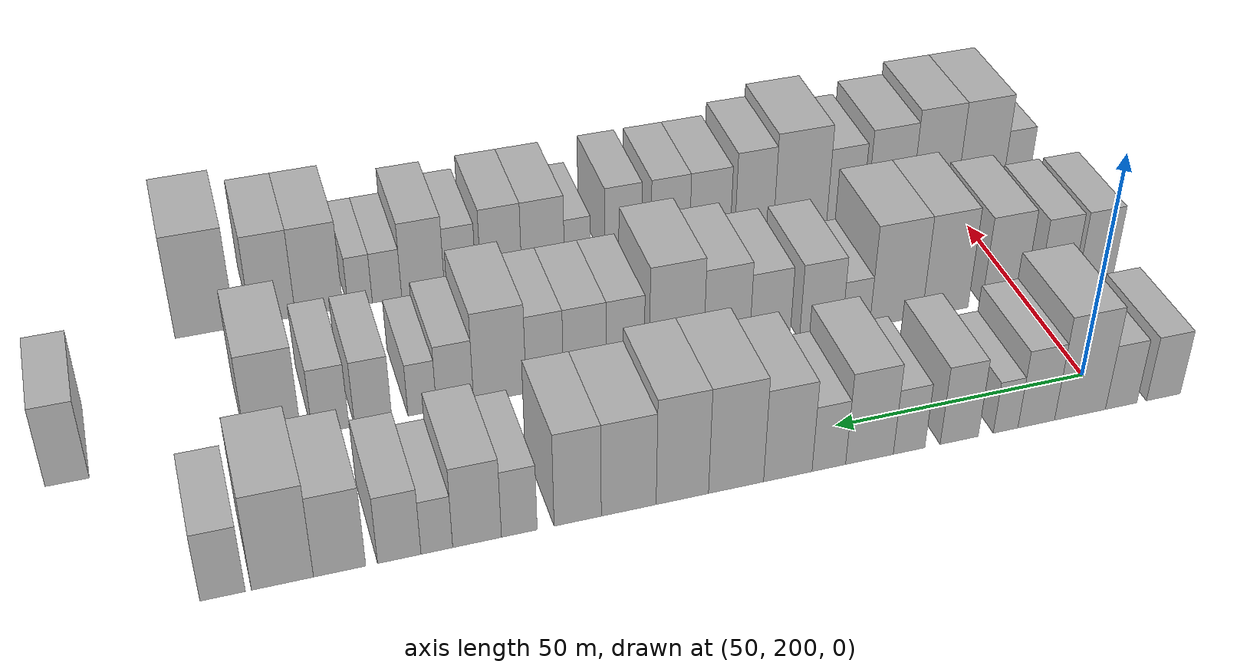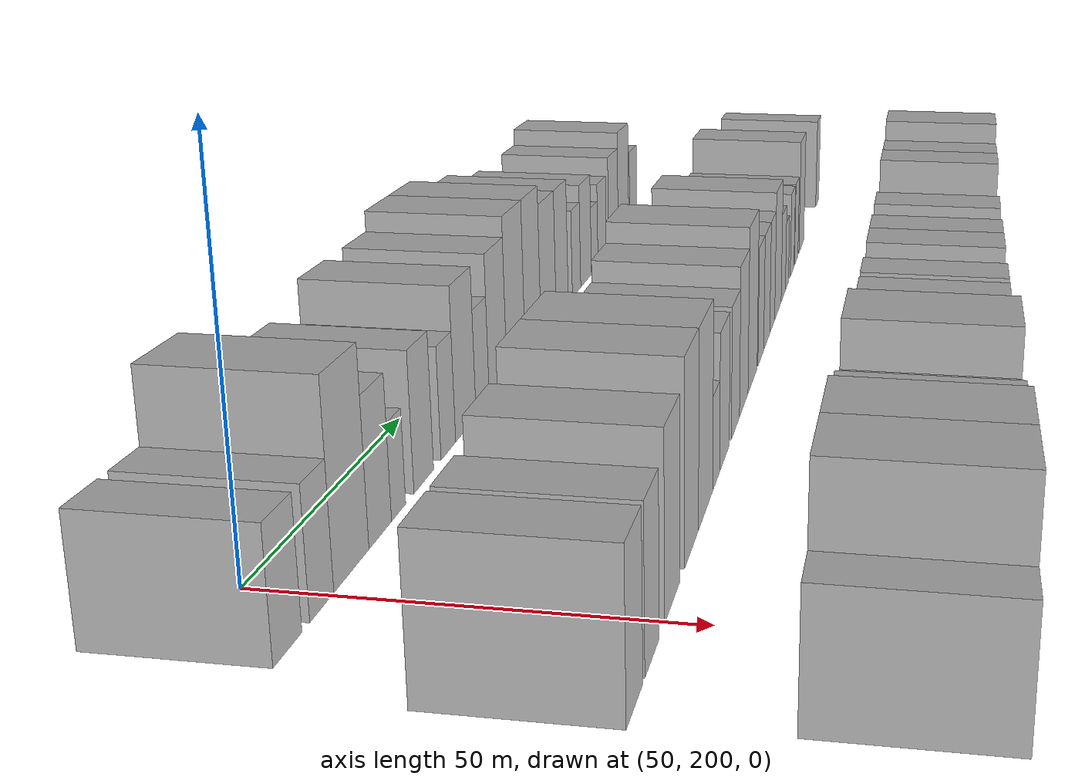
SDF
<sdf version="1.6">
 <world name="default">
  <model name="building_65">
   <static>1</static>
   <pose>50.0000 188.6103 0 0.000000 0.000000 0.000000</pose>
   <link name="link">
    <pose>0 0 7.50 0 0 0</pose>
    <collision name="collision"><geometry><box><size>20.0000 7.0349 15.0000</size></box></geometry></collision>
    <visual name="visual">
     <cast_shadows>0</cast_shadows>
     <geometry><box><size>20.0000 7.0349 15.0000</size></box></geometry>
     <material>
      <script>
       <uri>model://HANNAS_wall/materials/scripts</uri>
       <uri>model://HANNAS_wall/materials/textures</uri>
       <name>vrc/HANNAS_wall</name>
      </script>
     </material>
    </visual>
   </link>
  </model>
  <model name="building_66">
   <static>1</static>
   <pose>50.0000 197.3652 0 0.000000 0.000000 0.000000</pose>
   <link name="link">
    <pose>0 0 7.50 0 0 0</pose>
    <collision name="collision"><geometry><box><size>20.0000 6.4748 15.0000</size></box></geometry></collision>
    <visual name="visual">
     <cast_shadows>0</cast_shadows>
     <geometry><box><size>20.0000 6.4748 15.0000</size></box></geometry>
     <material>
      <script>
       <uri>model://HANNAS_wall/materials/scripts</uri>
       <uri>model://HANNAS_wall/materials/textures</uri>
       <name>vrc/HANNAS_wall</name>
      </script>
     </material>
    </visual>
   </link>
  </model>
  <model name="building_67">
   <static>1</static>
   <pose>50.0000 205.8028 0 0.000000 0.000000 0.000000</pose>
   <link name="link">
    <pose>0 0 12.00 0 0 0</pose>
    <collision name="collision"><geometry><box><size>20.0000 10.4004 24.0000</size></box></geometry></collision>
    <visual name="visual">
     <cast_shadows>0</cast_shadows>
     <geometry><box><size>20.0000 10.4004 24.0000</size></box></geometry>
     <material>
      <script>
       <uri>model://HANNAS_wall/materials/scripts</uri>
       <uri>model://HANNAS_wall/materials/textures</uri>
       <name>vrc/HANNAS_wall</name>
      </script>
     </material>
    </visual>
   </link>
  </model>
  <model name="building_68">
   <static>1</static>
   <pose>50.0000 214.6893 0 0.000000 0.000000 0.000000</pose>
   <link name="link">
    <pose>0 0 9.00 0 0 0</pose>
    <collision name="collision"><geometry><box><size>20.0000 7.3727 18.0000</size></box></geometry></collision>
    <visual name="visual">
     <cast_shadows>0</cast_shadows>
     <geometry><box><size>20.0000 7.3727 18.0000</size></box></geometry>
     <material>
      <script>
       <uri>model://HANNAS_wall/materials/scripts</uri>
       <uri>model://HANNAS_wall/materials/textures</uri>
       <name>vrc/HANNAS_wall</name>
      </script>
     </material>
    </visual>
   </link>
  </model>
  <model name="building_69">
   <static>1</static>
   <pose>50.0000 220.8367 0 0.000000 0.000000 0.000000</pose>
   <link name="link">
    <pose>0 0 6.00 0 0 0</pose>
    <collision name="collision"><geometry><box><size>20.0000 4.9220 12.0000</size></box></geometry></collision>
    <visual name="visual">
     <cast_shadows>0</cast_shadows>
     <geometry><box><size>20.0000 4.9220 12.0000</size></box></geometry>
     <material>
      <script>
       <uri>model://HANNAS_wall/materials/scripts</uri>
       <uri>model://HANNAS_wall/materials/textures</uri>
       <name>vrc/HANNAS_wall</name>
      </script>
     </material>
    </visual>
   </link>
  </model>
  <model name="building_70">
   <static>1</static>
   <pose>50.0000 230.0534 0 0.000000 0.000000 0.000000</pose>
   <link name="link">
    <pose>0 0 9.00 0 0 0</pose>
    <collision name="collision"><geometry><box><size>20.0000 7.5115 18.0000</size></box></geometry></collision>
    <visual name="visual">
     <cast_shadows>0</cast_shadows>
     <geometry><box><size>20.0000 7.5115 18.0000</size></box></geometry>
     <material>
      <script>
       <uri>model://HANNAS_wall/materials/scripts</uri>
       <uri>model://HANNAS_wall/materials/textures</uri>
       <name>vrc/HANNAS_wall</name>
      </script>
     </material>
    </visual>
   </link>
  </model>
  <model name="building_71">
   <static>1</static>
   <pose>50.0000 239.8862 0 0.000000 0.000000 0.000000</pose>
   <link name="link">
    <pose>0 0 7.50 0 0 0</pose>
    <collision name="collision"><geometry><box><size>20.0000 6.1540 15.0000</size></box></geometry></collision>
    <visual name="visual">
     <cast_shadows>0</cast_shadows>
     <geometry><box><size>20.0000 6.1540 15.0000</size></box></geometry>
     <material>
      <script>
       <uri>model://HANNAS_wall/materials/scripts</uri>
       <uri>model://HANNAS_wall/materials/textures</uri>
       <name>vrc/HANNAS_wall</name>
      </script>
     </material>
    </visual>
   </link>
  </model>
  <model name="building_72">
   <static>1</static>
   <pose>50.0000 247.5610 0 0.000000 0.000000 0.000000</pose>
   <link name="link">
    <pose>0 0 10.50 0 0 0</pose>
    <collision name="collision"><geometry><box><size>20.0000 9.1957 21.0000</size></box></geometry></collision>
    <visual name="visual">
     <cast_shadows>0</cast_shadows>
     <geometry><box><size>20.0000 9.1957 21.0000</size></box></geometry>
     <material>
      <script>
       <uri>model://HANNAS_wall/materials/scripts</uri>
       <uri>model://HANNAS_wall/materials/textures</uri>
       <name>vrc/HANNAS_wall</name>
      </script>
     </material>
    </visual>
   </link>
  </model>
  <model name="building_73">
   <static>1</static>
   <pose>50.0000 255.3645 0 0.000000 0.000000 0.000000</pose>
   <link name="link">
    <pose>0 0 7.50 0 0 0</pose>
    <collision name="collision"><geometry><box><size>20.0000 6.4113 15.0000</size></box></geometry></collision>
    <visual name="visual">
     <cast_shadows>0</cast_shadows>
     <geometry><box><size>20.0000 6.4113 15.0000</size></box></geometry>
     <material>
      <script>
       <uri>model://HANNAS_wall/materials/scripts</uri>
       <uri>model://HANNAS_wall/materials/textures</uri>
       <name>vrc/HANNAS_wall</name>
      </script>
     </material>
    </visual>
   </link>
  </model>
  <model name="building_74">
   <static>1</static>
   <pose>50.0000 263.1410 0 0.000000 0.000000 0.000000</pose>
   <link name="link">
    <pose>0 0 10.50 0 0 0</pose>
    <collision name="collision"><geometry><box><size>20.0000 9.1418 21.0000</size></box></geometry></collision>
    <visual name="visual">
     <cast_shadows>0</cast_shadows>
     <geometry><box><size>20.0000 9.1418 21.0000</size></box></geometry>
     <material>
      <script>
       <uri>model://HANNAS_wall/materials/scripts</uri>
       <uri>model://HANNAS_wall/materials/textures</uri>
       <name>vrc/HANNAS_wall</name>
      </script>
     </material>
    </visual>
   </link>
  </model>
  <model name="building_75">
   <static>1</static>
   <pose>50.0000 272.8358 0 0.000000 0.000000 0.000000</pose>
   <link name="link">
    <pose>0 0 12.00 0 0 0</pose>
    <collision name="collision"><geometry><box><size>20.0000 10.2479 24.0000</size></box></geometry></collision>
    <visual name="visual">
     <cast_shadows>0</cast_shadows>
     <geometry><box><size>20.0000 10.2479 24.0000</size></box></geometry>
     <material>
      <script>
       <uri>model://HANNAS_wall/materials/scripts</uri>
       <uri>model://HANNAS_wall/materials/textures</uri>
       <name>vrc/HANNAS_wall</name>
      </script>
     </material>
    </visual>
   </link>
  </model>
  <model name="building_76">
   <static>1</static>
   <pose>50.0000 282.7688 0 0.000000 0.000000 0.000000</pose>
   <link name="link">
    <pose>0 0 12.00 0 0 0</pose>
    <collision name="collision"><geometry><box><size>20.0000 9.6182 24.0000</size></box></geometry></collision>
    <visual name="visual">
     <cast_shadows>0</cast_shadows>
     <geometry><box><size>20.0000 9.6182 24.0000</size></box></geometry>
     <material>
      <script>
       <uri>model://HANNAS_wall/materials/scripts</uri>
       <uri>model://HANNAS_wall/materials/textures</uri>
       <name>vrc/HANNAS_wall</name>
      </script>
     </material>
    </visual>
   </link>
  </model>
  <model name="building_77">
   <static>1</static>
   <pose>50.0000 292.5412 0 0.000000 0.000000 0.000000</pose>
   <link name="link">
    <pose>0 0 10.50 0 0 0</pose>
    <collision name="collision"><geometry><box><size>20.0000 9.9265 21.0000</size></box></geometry></collision>
    <visual name="visual">
     <cast_shadows>0</cast_shadows>
     <geometry><box><size>20.0000 9.9265 21.0000</size></box></geometry>
     <material>
      <script>
       <uri>model://HANNAS_wall/materials/scripts</uri>
       <uri>model://HANNAS_wall/materials/textures</uri>
       <name>vrc/HANNAS_wall</name>
      </script>
     </material>
    </visual>
   </link>
  </model>
  <model name="building_78">
   <static>1</static>
   <pose>50.0000 301.7218 0 0.000000 0.000000 0.000000</pose>
   <link name="link">
    <pose>0 0 10.50 0 0 0</pose>
    <collision name="collision"><geometry><box><size>20.0000 8.4347 21.0000</size></box></geometry></collision>
    <visual name="visual">
     <cast_shadows>0</cast_shadows>
     <geometry><box><size>20.0000 8.4347 21.0000</size></box></geometry>
     <material>
      <script>
       <uri>model://HANNAS_wall/materials/scripts</uri>
       <uri>model://HANNAS_wall/materials/textures</uri>
       <name>vrc/HANNAS_wall</name>
      </script>
     </material>
    </visual>
   </link>
  </model>
  <model name="building_79">
   <static>1</static>
   <pose>50.0000 312.0803 0 0.000000 0.000000 0.000000</pose>
   <link name="link">
    <pose>0 0 7.50 0 0 0</pose>
    <collision name="collision"><geometry><box><size>20.0000 6.2825 15.0000</size></box></geometry></collision>
    <visual name="visual">
     <cast_shadows>0</cast_shadows>
     <geometry><box><size>20.0000 6.2825 15.0000</size></box></geometry>
     <material>
      <script>
       <uri>model://HANNAS_wall/materials/scripts</uri>
       <uri>model://HANNAS_wall/materials/textures</uri>
       <name>vrc/HANNAS_wall</name>
      </script>
     </material>
    </visual>
   </link>
  </model>
  <model name="building_80">
   <static>1</static>
   <pose>50.0000 319.4730 0 0.000000 0.000000 0.000000</pose>
   <link name="link">
    <pose>0 0 9.00 0 0 0</pose>
    <collision name="collision"><geometry><box><size>20.0000 8.5029 18.0000</size></box></geometry></collision>
    <visual name="visual">
     <cast_shadows>0</cast_shadows>
     <geometry><box><size>20.0000 8.5029 18.0000</size></box></geometry>
     <material>
      <script>
       <uri>model://HANNAS_wall/materials/scripts</uri>
       <uri>model://HANNAS_wall/materials/textures</uri>
       <name>vrc/HANNAS_wall</name>
      </script>
     </material>
    </visual>
   </link>
  </model>
  <model name="building_81">
   <static>1</static>
   <pose>50.0000 326.4572 0 0.000000 0.000000 0.000000</pose>
   <link name="link">
    <pose>0 0 6.00 0 0 0</pose>
    <collision name="collision"><geometry><box><size>20.0000 5.4654 12.0000</size></box></geometry></collision>
    <visual name="visual">
     <cast_shadows>0</cast_shadows>
     <geometry><box><size>20.0000 5.4654 12.0000</size></box></geometry>
     <material>
      <script>
       <uri>model://HANNAS_wall/materials/scripts</uri>
       <uri>model://HANNAS_wall/materials/textures</uri>
       <name>vrc/HANNAS_wall</name>
      </script>
     </material>
    </visual>
   </link>
  </model>
  <model name="building_82">
   <static>1</static>
   <pose>50.0000 332.9049 0 0.000000 0.000000 0.000000</pose>
   <link name="link">
    <pose>0 0 7.50 0 0 0</pose>
    <collision name="collision"><geometry><box><size>20.0000 7.4299 15.0000</size></box></geometry></collision>
    <visual name="visual">
     <cast_shadows>0</cast_shadows>
     <geometry><box><size>20.0000 7.4299 15.0000</size></box></geometry>
     <material>
      <script>
       <uri>model://HANNAS_wall/materials/scripts</uri>
       <uri>model://HANNAS_wall/materials/textures</uri>
       <name>vrc/HANNAS_wall</name>
      </script>
     </material>
    </visual>
   </link>
  </model>
  <model name="building_83">
   <static>1</static>
   <pose>50.0000 343.0223 0 0.000000 0.000000 0.000000</pose>
   <link name="link">
    <pose>0 0 9.00 0 0 0</pose>
    <collision name="collision"><geometry><box><size>20.0000 8.8050 18.0000</size></box></geometry></collision>
    <visual name="visual">
     <cast_shadows>0</cast_shadows>
     <geometry><box><size>20.0000 8.8050 18.0000</size></box></geometry>
     <material>
      <script>
       <uri>model://HANNAS_wall/materials/scripts</uri>
       <uri>model://HANNAS_wall/materials/textures</uri>
       <name>vrc/HANNAS_wall</name>
      </script>
     </material>
    </visual>
   </link>
  </model>
  <model name="building_84">
   <static>1</static>
   <pose>50.0000 352.5790 0 0.000000 0.000000 0.000000</pose>
   <link name="link">
    <pose>0 0 10.50 0 0 0</pose>
    <collision name="collision"><geometry><box><size>20.0000 10.3086 21.0000</size></box></geometry></collision>
    <visual name="visual">
     <cast_shadows>0</cast_shadows>
     <geometry><box><size>20.0000 10.3086 21.0000</size></box></geometry>
     <material>
      <script>
       <uri>model://HANNAS_wall/materials/scripts</uri>
       <uri>model://HANNAS_wall/materials/textures</uri>
       <name>vrc/HANNAS_wall</name>
      </script>
     </material>
    </visual>
   </link>
  </model>
  <model name="building_85">
   <static>1</static>
   <pose>50.0000 362.4500 0 0.000000 0.000000 0.000000</pose>
   <link name="link">
    <pose>0 0 7.50 0 0 0</pose>
    <collision name="collision"><geometry><box><size>20.0000 7.4333 15.0000</size></box></geometry></collision>
    <visual name="visual">
     <cast_shadows>0</cast_shadows>
     <geometry><box><size>20.0000 7.4333 15.0000</size></box></geometry>
     <material>
      <script>
       <uri>model://HANNAS_wall/materials/scripts</uri>
       <uri>model://HANNAS_wall/materials/textures</uri>
       <name>vrc/HANNAS_wall</name>
      </script>
     </material>
    </visual>
   </link>
  </model>
  <model name="building_145">
   <static>1</static>
   <pose>85.0000 183.9886 0 0.000000 0.000000 0.000000</pose>
   <link name="link">
    <pose>0 0 9.00 0 0 0</pose>
    <collision name="collision"><geometry><box><size>20.0000 7.8847 18.0000</size></box></geometry></collision>
    <visual name="visual">
     <cast_shadows>0</cast_shadows>
     <geometry><box><size>20.0000 7.8847 18.0000</size></box></geometry>
     <material>
      <script>
       <uri>model://HANNAS_wall/materials/scripts</uri>
       <uri>model://HANNAS_wall/materials/textures</uri>
       <name>vrc/HANNAS_wall</name>
      </script>
     </material>
    </visual>
   </link>
  </model>
  <model name="building_146">
   <static>1</static>
   <pose>85.0000 192.7471 0 0.000000 0.000000 0.000000</pose>
   <link name="link">
    <pose>0 0 9.00 0 0 0</pose>
    <collision name="collision"><geometry><box><size>20.0000 7.6324 18.0000</size></box></geometry></collision>
    <visual name="visual">
     <cast_shadows>0</cast_shadows>
     <geometry><box><size>20.0000 7.6324 18.0000</size></box></geometry>
     <material>
      <script>
       <uri>model://HANNAS_wall/materials/scripts</uri>
       <uri>model://HANNAS_wall/materials/textures</uri>
       <name>vrc/HANNAS_wall</name>
      </script>
     </material>
    </visual>
   </link>
  </model>
  <model name="building_147">
   <static>1</static>
   <pose>85.0000 204.1989 0 0.000000 0.000000 0.000000</pose>
   <link name="link">
    <pose>0 0 10.50 0 0 0</pose>
    <collision name="collision"><geometry><box><size>20.0000 9.2712 21.0000</size></box></geometry></collision>
    <visual name="visual">
     <cast_shadows>0</cast_shadows>
     <geometry><box><size>20.0000 9.2712 21.0000</size></box></geometry>
     <material>
      <script>
       <uri>model://HANNAS_wall/materials/scripts</uri>
       <uri>model://HANNAS_wall/materials/textures</uri>
       <name>vrc/HANNAS_wall</name>
      </script>
     </material>
    </visual>
   </link>
  </model>
  <model name="building_148">
   <static>1</static>
   <pose>85.0000 216.7560 0 0.000000 0.000000 0.000000</pose>
   <link name="link">
    <pose>0 0 12.00 0 0 0</pose>
    <collision name="collision"><geometry><box><size>20.0000 9.8429 24.0000</size></box></geometry></collision>
    <visual name="visual">
     <cast_shadows>0</cast_shadows>
     <geometry><box><size>20.0000 9.8429 24.0000</size></box></geometry>
     <material>
      <script>
       <uri>model://HANNAS_wall/materials/scripts</uri>
       <uri>model://HANNAS_wall/materials/textures</uri>
       <name>vrc/HANNAS_wall</name>
      </script>
     </material>
    </visual>
   </link>
  </model>
  <model name="building_149">
   <static>1</static>
   <pose>85.0000 227.2353 0 0.000000 0.000000 0.000000</pose>
   <link name="link">
    <pose>0 0 12.00 0 0 0</pose>
    <collision name="collision"><geometry><box><size>20.0000 11.1158 24.0000</size></box></geometry></collision>
    <visual name="visual">
     <cast_shadows>0</cast_shadows>
     <geometry><box><size>20.0000 11.1158 24.0000</size></box></geometry>
     <material>
      <script>
       <uri>model://HANNAS_wall/materials/scripts</uri>
       <uri>model://HANNAS_wall/materials/textures</uri>
       <name>vrc/HANNAS_wall</name>
      </script>
     </material>
    </visual>
   </link>
  </model>
  <model name="building_150">
   <static>1</static>
   <pose>85.0000 235.6933 0 0.000000 0.000000 0.000000</pose>
   <link name="link">
    <pose>0 0 6.00 0 0 0</pose>
    <collision name="collision"><geometry><box><size>20.0000 5.8001 12.0000</size></box></geometry></collision>
    <visual name="visual">
     <cast_shadows>0</cast_shadows>
     <geometry><box><size>20.0000 5.8001 12.0000</size></box></geometry>
     <material>
      <script>
       <uri>model://HANNAS_wall/materials/scripts</uri>
       <uri>model://HANNAS_wall/materials/textures</uri>
       <name>vrc/HANNAS_wall</name>
      </script>
     </material>
    </visual>
   </link>
  </model>
  <model name="building_151">
   <static>1</static>
   <pose>85.0000 243.0001 0 0.000000 0.000000 0.000000</pose>
   <link name="link">
    <pose>0 0 9.00 0 0 0</pose>
    <collision name="collision"><geometry><box><size>20.0000 8.8135 18.0000</size></box></geometry></collision>
    <visual name="visual">
     <cast_shadows>0</cast_shadows>
     <geometry><box><size>20.0000 8.8135 18.0000</size></box></geometry>
     <material>
      <script>
       <uri>model://HANNAS_wall/materials/scripts</uri>
       <uri>model://HANNAS_wall/materials/textures</uri>
       <name>vrc/HANNAS_wall</name>
      </script>
     </material>
    </visual>
   </link>
  </model>
  <model name="building_152">
   <static>1</static>
   <pose>85.0000 253.5554 0 0.000000 0.000000 0.000000</pose>
   <link name="link">
    <pose>0 0 9.00 0 0 0</pose>
    <collision name="collision"><geometry><box><size>20.0000 8.2970 18.0000</size></box></geometry></collision>
    <visual name="visual">
     <cast_shadows>0</cast_shadows>
     <geometry><box><size>20.0000 8.2970 18.0000</size></box></geometry>
     <material>
      <script>
       <uri>model://HANNAS_wall/materials/scripts</uri>
       <uri>model://HANNAS_wall/materials/textures</uri>
       <name>vrc/HANNAS_wall</name>
      </script>
     </material>
    </visual>
   </link>
  </model>
  <model name="building_153">
   <static>1</static>
   <pose>85.0000 262.3510 0 0.000000 0.000000 0.000000</pose>
   <link name="link">
    <pose>0 0 10.50 0 0 0</pose>
    <collision name="collision"><geometry><box><size>20.0000 9.2942 21.0000</size></box></geometry></collision>
    <visual name="visual">
     <cast_shadows>0</cast_shadows>
     <geometry><box><size>20.0000 9.2942 21.0000</size></box></geometry>
     <material>
      <script>
       <uri>model://HANNAS_wall/materials/scripts</uri>
       <uri>model://HANNAS_wall/materials/textures</uri>
       <name>vrc/HANNAS_wall</name>
      </script>
     </material>
    </visual>
   </link>
  </model>
  <model name="building_154">
   <static>1</static>
   <pose>85.0000 272.4054 0 0.000000 0.000000 0.000000</pose>
   <link name="link">
    <pose>0 0 12.00 0 0 0</pose>
    <collision name="collision"><geometry><box><size>20.0000 10.8147 24.0000</size></box></geometry></collision>
    <visual name="visual">
     <cast_shadows>0</cast_shadows>
     <geometry><box><size>20.0000 10.8147 24.0000</size></box></geometry>
     <material>
      <script>
       <uri>model://HANNAS_wall/materials/scripts</uri>
       <uri>model://HANNAS_wall/materials/textures</uri>
       <name>vrc/HANNAS_wall</name>
      </script>
     </material>
    </visual>
   </link>
  </model>
  <model name="building_155">
   <static>1</static>
   <pose>85.0000 282.5316 0 0.000000 0.000000 0.000000</pose>
   <link name="link">
    <pose>0 0 9.00 0 0 0</pose>
    <collision name="collision"><geometry><box><size>20.0000 7.4376 18.0000</size></box></geometry></collision>
    <visual name="visual">
     <cast_shadows>0</cast_shadows>
     <geometry><box><size>20.0000 7.4376 18.0000</size></box></geometry>
     <material>
      <script>
       <uri>model://HANNAS_wall/materials/scripts</uri>
       <uri>model://HANNAS_wall/materials/textures</uri>
       <name>vrc/HANNAS_wall</name>
      </script>
     </material>
    </visual>
   </link>
  </model>
  <model name="building_156">
   <static>1</static>
   <pose>85.0000 290.4359 0 0.000000 0.000000 0.000000</pose>
   <link name="link">
    <pose>0 0 9.00 0 0 0</pose>
    <collision name="collision"><geometry><box><size>20.0000 8.3710 18.0000</size></box></geometry></collision>
    <visual name="visual">
     <cast_shadows>0</cast_shadows>
     <geometry><box><size>20.0000 8.3710 18.0000</size></box></geometry>
     <material>
      <script>
       <uri>model://HANNAS_wall/materials/scripts</uri>
       <uri>model://HANNAS_wall/materials/textures</uri>
       <name>vrc/HANNAS_wall</name>
      </script>
     </material>
    </visual>
   </link>
  </model>
  <model name="building_157">
   <static>1</static>
   <pose>85.0000 298.2253 0 0.000000 0.000000 0.000000</pose>
   <link name="link">
    <pose>0 0 9.00 0 0 0</pose>
    <collision name="collision"><geometry><box><size>20.0000 7.2078 18.0000</size></box></geometry></collision>
    <visual name="visual">
     <cast_shadows>0</cast_shadows>
     <geometry><box><size>20.0000 7.2078 18.0000</size></box></geometry>
     <material>
      <script>
       <uri>model://HANNAS_wall/materials/scripts</uri>
       <uri>model://HANNAS_wall/materials/textures</uri>
       <name>vrc/HANNAS_wall</name>
      </script>
     </material>
    </visual>
   </link>
  </model>
  <model name="building_158">
   <static>1</static>
   <pose>85.0000 306.8424 0 0.000000 0.000000 0.000000</pose>
   <link name="link">
    <pose>0 0 10.50 0 0 0</pose>
    <collision name="collision"><geometry><box><size>20.0000 10.0263 21.0000</size></box></geometry></collision>
    <visual name="visual">
     <cast_shadows>0</cast_shadows>
     <geometry><box><size>20.0000 10.0263 21.0000</size></box></geometry>
     <material>
      <script>
       <uri>model://HANNAS_wall/materials/scripts</uri>
       <uri>model://HANNAS_wall/materials/textures</uri>
       <name>vrc/HANNAS_wall</name>
      </script>
     </material>
    </visual>
   </link>
  </model>
  <model name="building_159">
   <static>1</static>
   <pose>85.0000 315.3717 0 0.000000 0.000000 0.000000</pose>
   <link name="link">
    <pose>0 0 7.50 0 0 0</pose>
    <collision name="collision"><geometry><box><size>20.0000 7.0324 15.0000</size></box></geometry></collision>
    <visual name="visual">
     <cast_shadows>0</cast_shadows>
     <geometry><box><size>20.0000 7.0324 15.0000</size></box></geometry>
     <material>
      <script>
       <uri>model://HANNAS_wall/materials/scripts</uri>
       <uri>model://HANNAS_wall/materials/textures</uri>
       <name>vrc/HANNAS_wall</name>
      </script>
     </material>
    </visual>
   </link>
  </model>
  <model name="building_160">
   <static>1</static>
   <pose>85.0000 321.5623 0 0.000000 0.000000 0.000000</pose>
   <link name="link">
    <pose>0 0 6.00 0 0 0</pose>
    <collision name="collision"><geometry><box><size>20.0000 5.3487 12.0000</size></box></geometry></collision>
    <visual name="visual">
     <cast_shadows>0</cast_shadows>
     <geometry><box><size>20.0000 5.3487 12.0000</size></box></geometry>
     <material>
      <script>
       <uri>model://HANNAS_wall/materials/scripts</uri>
       <uri>model://HANNAS_wall/materials/textures</uri>
       <name>vrc/HANNAS_wall</name>
      </script>
     </material>
    </visual>
   </link>
  </model>
  <model name="building_161">
   <static>1</static>
   <pose>85.0000 330.6893 0 0.000000 0.000000 0.000000</pose>
   <link name="link">
    <pose>0 0 7.50 0 0 0</pose>
    <collision name="collision"><geometry><box><size>20.0000 6.9052 15.0000</size></box></geometry></collision>
    <visual name="visual">
     <cast_shadows>0</cast_shadows>
     <geometry><box><size>20.0000 6.9052 15.0000</size></box></geometry>
     <material>
      <script>
       <uri>model://HANNAS_wall/materials/scripts</uri>
       <uri>model://HANNAS_wall/materials/textures</uri>
       <name>vrc/HANNAS_wall</name>
      </script>
     </material>
    </visual>
   </link>
  </model>
  <model name="building_162">
   <static>1</static>
   <pose>85.0000 338.5051 0 0.000000 0.000000 0.000000</pose>
   <link name="link">
    <pose>0 0 7.50 0 0 0</pose>
    <collision name="collision"><geometry><box><size>20.0000 6.7264 15.0000</size></box></geometry></collision>
    <visual name="visual">
     <cast_shadows>0</cast_shadows>
     <geometry><box><size>20.0000 6.7264 15.0000</size></box></geometry>
     <material>
      <script>
       <uri>model://HANNAS_wall/materials/scripts</uri>
       <uri>model://HANNAS_wall/materials/textures</uri>
       <name>vrc/HANNAS_wall</name>
      </script>
     </material>
    </visual>
   </link>
  </model>
  <model name="building_163">
   <static>1</static>
   <pose>85.0000 348.8778 0 0.000000 0.000000 0.000000</pose>
   <link name="link">
    <pose>0 0 10.50 0 0 0</pose>
    <collision name="collision"><geometry><box><size>20.0000 10.0191 21.0000</size></box></geometry></collision>
    <visual name="visual">
     <cast_shadows>0</cast_shadows>
     <geometry><box><size>20.0000 10.0191 21.0000</size></box></geometry>
     <material>
      <script>
       <uri>model://HANNAS_wall/materials/scripts</uri>
       <uri>model://HANNAS_wall/materials/textures</uri>
       <name>vrc/HANNAS_wall</name>
      </script>
     </material>
    </visual>
   </link>
  </model>
  <model name="building_164">
   <static>1</static>
   <pose>85.0000 385.3236 0 0.000000 0.000000 0.000000</pose>
   <link name="link">
    <pose>0 0 9.00 0 0 0</pose>
    <collision name="collision"><geometry><box><size>20.0000 7.6242 18.0000</size></box></geometry></collision>
    <visual name="visual">
     <cast_shadows>0</cast_shadows>
     <geometry><box><size>20.0000 7.6242 18.0000</size></box></geometry>
     <material>
      <script>
       <uri>model://HANNAS_wall/materials/scripts</uri>
       <uri>model://HANNAS_wall/materials/textures</uri>
       <name>vrc/HANNAS_wall</name>
      </script>
     </material>
    </visual>
   </link>
  </model>
  <model name="building_226">
   <static>1</static>
   <pose>120.0000 184.2614 0 0.000000 0.000000 0.000000</pose>
   <link name="link">
    <pose>0 0 7.50 0 0 0</pose>
    <collision name="collision"><geometry><box><size>20.0000 6.2006 15.0000</size></box></geometry></collision>
    <visual name="visual">
     <cast_shadows>0</cast_shadows>
     <geometry><box><size>20.0000 6.2006 15.0000</size></box></geometry>
     <material>
      <script>
       <uri>model://HANNAS_wall/materials/scripts</uri>
       <uri>model://HANNAS_wall/materials/textures</uri>
       <name>vrc/HANNAS_wall</name>
      </script>
     </material>
    </visual>
   </link>
  </model>
  <model name="building_227">
   <static>1</static>
   <pose>120.0000 192.7088 0 0.000000 0.000000 0.000000</pose>
   <link name="link">
    <pose>0 0 12.00 0 0 0</pose>
    <collision name="collision"><geometry><box><size>20.0000 10.6941 24.0000</size></box></geometry></collision>
    <visual name="visual">
     <cast_shadows>0</cast_shadows>
     <geometry><box><size>20.0000 10.6941 24.0000</size></box></geometry>
     <material>
      <script>
       <uri>model://HANNAS_wall/materials/scripts</uri>
       <uri>model://HANNAS_wall/materials/textures</uri>
       <name>vrc/HANNAS_wall</name>
      </script>
     </material>
    </visual>
   </link>
  </model>
  <model name="building_228">
   <static>1</static>
   <pose>120.0000 203.2987 0 0.000000 0.000000 0.000000</pose>
   <link name="link">
    <pose>0 0 12.00 0 0 0</pose>
    <collision name="collision"><geometry><box><size>20.0000 10.4856 24.0000</size></box></geometry></collision>
    <visual name="visual">
     <cast_shadows>0</cast_shadows>
     <geometry><box><size>20.0000 10.4856 24.0000</size></box></geometry>
     <material>
      <script>
       <uri>model://HANNAS_wall/materials/scripts</uri>
       <uri>model://HANNAS_wall/materials/textures</uri>
       <name>vrc/HANNAS_wall</name>
      </script>
     </material>
    </visual>
   </link>
  </model>
  <model name="building_229">
   <static>1</static>
   <pose>120.0000 213.6302 0 0.000000 0.000000 0.000000</pose>
   <link name="link">
    <pose>0 0 10.50 0 0 0</pose>
    <collision name="collision"><geometry><box><size>20.0000 10.1773 21.0000</size></box></geometry></collision>
    <visual name="visual">
     <cast_shadows>0</cast_shadows>
     <geometry><box><size>20.0000 10.1773 21.0000</size></box></geometry>
     <material>
      <script>
       <uri>model://HANNAS_wall/materials/scripts</uri>
       <uri>model://HANNAS_wall/materials/textures</uri>
       <name>vrc/HANNAS_wall</name>
      </script>
     </material>
    </visual>
   </link>
  </model>
  <model name="building_230">
   <static>1</static>
   <pose>120.0000 223.7211 0 0.000000 0.000000 0.000000</pose>
   <link name="link">
    <pose>0 0 9.00 0 0 0</pose>
    <collision name="collision"><geometry><box><size>20.0000 8.0046 18.0000</size></box></geometry></collision>
    <visual name="visual">
     <cast_shadows>0</cast_shadows>
     <geometry><box><size>20.0000 8.0046 18.0000</size></box></geometry>
     <material>
      <script>
       <uri>model://HANNAS_wall/materials/scripts</uri>
       <uri>model://HANNAS_wall/materials/textures</uri>
       <name>vrc/HANNAS_wall</name>
      </script>
     </material>
    </visual>
   </link>
  </model>
  <model name="building_231">
   <static>1</static>
   <pose>120.0000 233.6905 0 0.000000 0.000000 0.000000</pose>
   <link name="link">
    <pose>0 0 12.00 0 0 0</pose>
    <collision name="collision"><geometry><box><size>20.0000 11.9342 24.0000</size></box></geometry></collision>
    <visual name="visual">
     <cast_shadows>0</cast_shadows>
     <geometry><box><size>20.0000 11.9342 24.0000</size></box></geometry>
     <material>
      <script>
       <uri>model://HANNAS_wall/materials/scripts</uri>
       <uri>model://HANNAS_wall/materials/textures</uri>
       <name>vrc/HANNAS_wall</name>
      </script>
     </material>
    </visual>
   </link>
  </model>
  <model name="building_232">
   <static>1</static>
   <pose>120.0000 243.9291 0 0.000000 0.000000 0.000000</pose>
   <link name="link">
    <pose>0 0 10.50 0 0 0</pose>
    <collision name="collision"><geometry><box><size>20.0000 8.5429 21.0000</size></box></geometry></collision>
    <visual name="visual">
     <cast_shadows>0</cast_shadows>
     <geometry><box><size>20.0000 8.5429 21.0000</size></box></geometry>
     <material>
      <script>
       <uri>model://HANNAS_wall/materials/scripts</uri>
       <uri>model://HANNAS_wall/materials/textures</uri>
       <name>vrc/HANNAS_wall</name>
      </script>
     </material>
    </visual>
   </link>
  </model>
  <model name="building_233">
   <static>1</static>
   <pose>120.0000 253.6373 0 0.000000 0.000000 0.000000</pose>
   <link name="link">
    <pose>0 0 9.00 0 0 0</pose>
    <collision name="collision"><geometry><box><size>20.0000 8.8736 18.0000</size></box></geometry></collision>
    <visual name="visual">
     <cast_shadows>0</cast_shadows>
     <geometry><box><size>20.0000 8.8736 18.0000</size></box></geometry>
     <material>
      <script>
       <uri>model://HANNAS_wall/materials/scripts</uri>
       <uri>model://HANNAS_wall/materials/textures</uri>
       <name>vrc/HANNAS_wall</name>
      </script>
     </material>
    </visual>
   </link>
  </model>
  <model name="building_234">
   <static>1</static>
   <pose>120.0000 262.2475 0 0.000000 0.000000 0.000000</pose>
   <link name="link">
    <pose>0 0 9.00 0 0 0</pose>
    <collision name="collision"><geometry><box><size>20.0000 8.3468 18.0000</size></box></geometry></collision>
    <visual name="visual">
     <cast_shadows>0</cast_shadows>
     <geometry><box><size>20.0000 8.3468 18.0000</size></box></geometry>
     <material>
      <script>
       <uri>model://HANNAS_wall/materials/scripts</uri>
       <uri>model://HANNAS_wall/materials/textures</uri>
       <name>vrc/HANNAS_wall</name>
      </script>
     </material>
    </visual>
   </link>
  </model>
  <model name="building_235">
   <static>1</static>
   <pose>120.0000 272.3525 0 0.000000 0.000000 0.000000</pose>
   <link name="link">
    <pose>0 0 9.00 0 0 0</pose>
    <collision name="collision"><geometry><box><size>20.0000 7.8633 18.0000</size></box></geometry></collision>
    <visual name="visual">
     <cast_shadows>0</cast_shadows>
     <geometry><box><size>20.0000 7.8633 18.0000</size></box></geometry>
     <material>
      <script>
       <uri>model://HANNAS_wall/materials/scripts</uri>
       <uri>model://HANNAS_wall/materials/textures</uri>
       <name>vrc/HANNAS_wall</name>
      </script>
     </material>
    </visual>
   </link>
  </model>
  <model name="building_236">
   <static>1</static>
   <pose>120.0000 282.0280 0 0.000000 0.000000 0.000000</pose>
   <link name="link">
    <pose>0 0 6.00 0 0 0</pose>
    <collision name="collision"><geometry><box><size>20.0000 5.4878 12.0000</size></box></geometry></collision>
    <visual name="visual">
     <cast_shadows>0</cast_shadows>
     <geometry><box><size>20.0000 5.4878 12.0000</size></box></geometry>
     <material>
      <script>
       <uri>model://HANNAS_wall/materials/scripts</uri>
       <uri>model://HANNAS_wall/materials/textures</uri>
       <name>vrc/HANNAS_wall</name>
      </script>
     </material>
    </visual>
   </link>
  </model>
  <model name="building_237">
   <static>1</static>
   <pose>120.0000 289.2414 0 0.000000 0.000000 0.000000</pose>
   <link name="link">
    <pose>0 0 9.00 0 0 0</pose>
    <collision name="collision"><geometry><box><size>20.0000 8.9389 18.0000</size></box></geometry></collision>
    <visual name="visual">
     <cast_shadows>0</cast_shadows>
     <geometry><box><size>20.0000 8.9389 18.0000</size></box></geometry>
     <material>
      <script>
       <uri>model://HANNAS_wall/materials/scripts</uri>
       <uri>model://HANNAS_wall/materials/textures</uri>
       <name>vrc/HANNAS_wall</name>
      </script>
     </material>
    </visual>
   </link>
  </model>
  <model name="building_238">
   <static>1</static>
   <pose>120.0000 297.9292 0 0.000000 0.000000 0.000000</pose>
   <link name="link">
    <pose>0 0 9.00 0 0 0</pose>
    <collision name="collision"><geometry><box><size>20.0000 8.4368 18.0000</size></box></geometry></collision>
    <visual name="visual">
     <cast_shadows>0</cast_shadows>
     <geometry><box><size>20.0000 8.4368 18.0000</size></box></geometry>
     <material>
      <script>
       <uri>model://HANNAS_wall/materials/scripts</uri>
       <uri>model://HANNAS_wall/materials/textures</uri>
       <name>vrc/HANNAS_wall</name>
      </script>
     </material>
    </visual>
   </link>
  </model>
  <model name="building_239">
   <static>1</static>
   <pose>120.0000 306.3830 0 0.000000 0.000000 0.000000</pose>
   <link name="link">
    <pose>0 0 7.50 0 0 0</pose>
    <collision name="collision"><geometry><box><size>20.0000 6.4709 15.0000</size></box></geometry></collision>
    <visual name="visual">
     <cast_shadows>0</cast_shadows>
     <geometry><box><size>20.0000 6.4709 15.0000</size></box></geometry>
     <material>
      <script>
       <uri>model://HANNAS_wall/materials/scripts</uri>
       <uri>model://HANNAS_wall/materials/textures</uri>
       <name>vrc/HANNAS_wall</name>
      </script>
     </material>
    </visual>
   </link>
  </model>
  <model name="building_240">
   <static>1</static>
   <pose>120.0000 313.9675 0 0.000000 0.000000 0.000000</pose>
   <link name="link">
    <pose>0 0 9.00 0 0 0</pose>
    <collision name="collision"><geometry><box><size>20.0000 8.6981 18.0000</size></box></geometry></collision>
    <visual name="visual">
     <cast_shadows>0</cast_shadows>
     <geometry><box><size>20.0000 8.6981 18.0000</size></box></geometry>
     <material>
      <script>
       <uri>model://HANNAS_wall/materials/scripts</uri>
       <uri>model://HANNAS_wall/materials/textures</uri>
       <name>vrc/HANNAS_wall</name>
      </script>
     </material>
    </visual>
   </link>
  </model>
  <model name="building_241">
   <static>1</static>
   <pose>120.0000 321.2678 0 0.000000 0.000000 0.000000</pose>
   <link name="link">
    <pose>0 0 6.00 0 0 0</pose>
    <collision name="collision"><geometry><box><size>20.0000 5.9024 12.0000</size></box></geometry></collision>
    <visual name="visual">
     <cast_shadows>0</cast_shadows>
     <geometry><box><size>20.0000 5.9024 12.0000</size></box></geometry>
     <material>
      <script>
       <uri>model://HANNAS_wall/materials/scripts</uri>
       <uri>model://HANNAS_wall/materials/textures</uri>
       <name>vrc/HANNAS_wall</name>
      </script>
     </material>
    </visual>
   </link>
  </model>
  <model name="building_242">
   <static>1</static>
   <pose>120.0000 326.6527 0 0.000000 0.000000 0.000000</pose>
   <link name="link">
    <pose>0 0 6.00 0 0 0</pose>
    <collision name="collision"><geometry><box><size>20.0000 4.8674 12.0000</size></box></geometry></collision>
    <visual name="visual">
     <cast_shadows>0</cast_shadows>
     <geometry><box><size>20.0000 4.8674 12.0000</size></box></geometry>
     <material>
      <script>
       <uri>model://HANNAS_wall/materials/scripts</uri>
       <uri>model://HANNAS_wall/materials/textures</uri>
       <name>vrc/HANNAS_wall</name>
      </script>
     </material>
    </visual>
   </link>
  </model>
  <model name="building_243">
   <static>1</static>
   <pose>120.0000 334.7791 0 0.000000 0.000000 0.000000</pose>
   <link name="link">
    <pose>0 0 10.50 0 0 0</pose>
    <collision name="collision"><geometry><box><size>20.0000 9.3854 21.0000</size></box></geometry></collision>
    <visual name="visual">
     <cast_shadows>0</cast_shadows>
     <geometry><box><size>20.0000 9.3854 21.0000</size></box></geometry>
     <material>
      <script>
       <uri>model://HANNAS_wall/materials/scripts</uri>
       <uri>model://HANNAS_wall/materials/textures</uri>
       <name>vrc/HANNAS_wall</name>
      </script>
     </material>
    </visual>
   </link>
  </model>
  <model name="building_244">
   <static>1</static>
   <pose>120.0000 343.8579 0 0.000000 0.000000 0.000000</pose>
   <link name="link">
    <pose>0 0 10.50 0 0 0</pose>
    <collision name="collision"><geometry><box><size>20.0000 8.7723 21.0000</size></box></geometry></collision>
    <visual name="visual">
     <cast_shadows>0</cast_shadows>
     <geometry><box><size>20.0000 8.7723 21.0000</size></box></geometry>
     <material>
      <script>
       <uri>model://HANNAS_wall/materials/scripts</uri>
       <uri>model://HANNAS_wall/materials/textures</uri>
       <name>vrc/HANNAS_wall</name>
      </script>
     </material>
    </visual>
   </link>
  </model>
  <model name="building_245">
   <static>1</static>
   <pose>120.0000 357.0412 0 0.000000 0.000000 0.000000</pose>
   <link name="link">
    <pose>0 0 12.00 0 0 0</pose>
    <collision name="collision"><geometry><box><size>20.0000 11.5943 24.0000</size></box></geometry></collision>
    <visual name="visual">
     <cast_shadows>0</cast_shadows>
     <geometry><box><size>20.0000 11.5943 24.0000</size></box></geometry>
     <material>
      <script>
       <uri>model://HANNAS_wall/materials/scripts</uri>
       <uri>model://HANNAS_wall/materials/textures</uri>
       <name>vrc/HANNAS_wall</name>
      </script>
     </material>
    </visual>
   </link>
  </model>
 </world>
</sdf>
